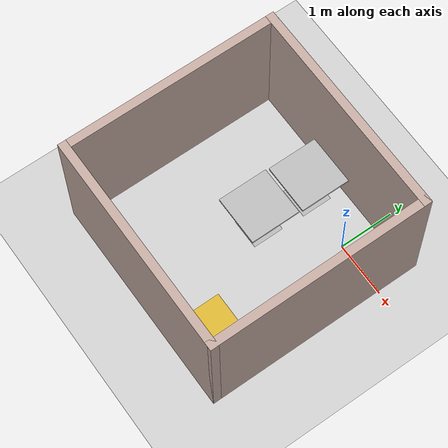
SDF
<sdf version="1.6">
 <world name="default">
  <light name="sun" type="directional">
   <pose>0 0 15 0 -0 0</pose>
   <diffuse>0.8 0.8 0.8 1</diffuse>
   <specular>0.2 0.2 0.2 1</specular>
   <attenuation>
    <range>1000</range>
    <constant>0.9</constant>
    <linear>0.01</linear>
    <quadratic>0.001</quadratic>
   </attenuation>
   <direction>-0.5 0.1 -0.9</direction>
  </light>
  <model name="ground_plane">
   <static>1</static>
   <link name="link">
    <collision name="collision">
     <geometry><plane><normal>0 0 1</normal><size>100 100</size></plane></geometry>
     <surface><friction><ode><mu>100</mu><mu2>50</mu2></ode></friction></surface>
    </collision>
    <visual name="visual">
     <cast_shadows>0</cast_shadows>
     <geometry><plane><normal>0 0 1</normal><size>100 100</size></plane></geometry>
     <material>
      <script><uri>file://media/materials/scripts/gazebo.material</uri><name>Gazebo/Grey</name></script>
     </material>
    </visual>
   </link>
  </model>
  <gravity>0 0 -9.8</gravity>
  <magnetic_field>6e-06 2.3e-05 -4.2e-05</magnetic_field>
  <atmosphere type="adiabatic"/>
  <physics name="default_physics" default="0" type="ode">
   <max_step_size>0.001</max_step_size>
   <real_time_factor>1</real_time_factor>
   <real_time_update_rate>1000</real_time_update_rate>
  </physics>
  <scene><ambient>0.4 0.4 0.4 1</ambient><background>0.7 0.7 0.7 1</background><shadows>1</shadows></scene>
  <audio><device>default</device></audio>
  <spherical_coordinates>
   <surface_model>EARTH_WGS84</surface_model>
   <latitude_deg>0</latitude_deg>
   <longitude_deg>0</longitude_deg>
   <elevation>0</elevation>
   <heading_deg>0</heading_deg>
  </spherical_coordinates>
  <model name="field1_F">
   <link name="Wall_0">
    <pose>0 1.925 0 0 -0 0</pose>
    <visual name="Wall_0_Visual">
     <pose>0 0 1.25 0 -0 0</pose>
     <geometry><box><size>4 0.15 2.5</size></box></geometry>
     <material>
      <script><uri>file://media/materials/scripts/gazebo.material</uri><name>Gazebo/Grey</name></script>
      <ambient>0.760784 0.662745 0.627451 1</ambient>
     </material>
     <meta><layer>0</layer></meta>
    </visual>
    <collision name="Wall_0_Collision">
     <pose>0 0 1.25 0 -0 0</pose>
     <geometry><box><size>4 0.15 2.5</size></box></geometry>
     <surface>
      <friction>
       <ode><mu>1</mu><mu2>1</mu2><fdir1>0 0 0</fdir1><slip1>0</slip1><slip2>0</slip2></ode>
       <torsional>
        <coefficient>1</coefficient>
        <patch_radius>0</patch_radius>
        <surface_radius>0</surface_radius>
        <use_patch_radius>1</use_patch_radius>
        <ode><slip>0</slip></ode>
       </torsional>
      </friction>
      <bounce><restitution_coefficient>0</restitution_coefficient><threshold>1e+06</threshold></bounce>
      <contact>
       <collide_without_contact>0</collide_without_contact>
       <collide_without_contact_bitmask>1</collide_without_contact_bitmask>
       <collide_bitmask>1</collide_bitmask>
       <ode>
        <soft_cfm>0</soft_cfm>
        <soft_erp>0.2</soft_erp>
        <kp>1e+13</kp>
        <kd>1</kd>
        <max_vel>0.01</max_vel>
        <min_depth>0</min_depth>
       </ode>
       <bullet>
        <split_impulse>1</split_impulse>
        <split_impulse_penetration_threshold>-0.01</split_impulse_penetration_threshold>
        <soft_cfm>0</soft_cfm>
        <soft_erp>0.2</soft_erp>
        <kp>1e+13</kp>
        <kd>1</kd>
       </bullet>
      </contact>
     </surface>
    </collision>
   </link>
   <link name="Wall_1">
    <pose>1.925 0 0 0 0 -1.5708</pose>
    <visual name="Wall_1_Visual">
     <pose>0 0 1.25 0 -0 0</pose>
     <geometry><box><size>4 0.15 2.5</size></box></geometry>
     <material>
      <script><uri>file://media/materials/scripts/gazebo.material</uri><name>Gazebo/Grey</name></script>
      <ambient>0.760784 0.662745 0.627451 1</ambient>
     </material>
     <meta><layer>0</layer></meta>
    </visual>
    <collision name="Wall_1_Collision">
     <pose>0 0 1.25 0 -0 0</pose>
     <geometry><box><size>4 0.15 2.5</size></box></geometry>
     <surface>
      <friction>
       <ode><mu>1</mu><mu2>1</mu2><fdir1>0 0 0</fdir1><slip1>0</slip1><slip2>0</slip2></ode>
       <torsional>
        <coefficient>1</coefficient>
        <patch_radius>0</patch_radius>
        <surface_radius>0</surface_radius>
        <use_patch_radius>1</use_patch_radius>
        <ode><slip>0</slip></ode>
       </torsional>
      </friction>
      <bounce><restitution_coefficient>0</restitution_coefficient><threshold>1e+06</threshold></bounce>
      <contact>
       <collide_without_contact>0</collide_without_contact>
       <collide_without_contact_bitmask>1</collide_without_contact_bitmask>
       <collide_bitmask>1</collide_bitmask>
       <ode>
        <soft_cfm>0</soft_cfm>
        <soft_erp>0.2</soft_erp>
        <kp>1e+13</kp>
        <kd>1</kd>
        <max_vel>0.01</max_vel>
        <min_depth>0</min_depth>
       </ode>
       <bullet>
        <split_impulse>1</split_impulse>
        <split_impulse_penetration_threshold>-0.01</split_impulse_penetration_threshold>
        <soft_cfm>0</soft_cfm>
        <soft_erp>0.2</soft_erp>
        <kp>1e+13</kp>
        <kd>1</kd>
       </bullet>
      </contact>
     </surface>
    </collision>
   </link>
   <link name="Wall_3">
    <pose>-1.925 0 0 0 0 -1.5708</pose>
    <visual name="Wall_3_Visual">
     <pose>0 0 1.25 0 -0 0</pose>
     <geometry><box><size>4 0.15 2.5</size></box></geometry>
     <material>
      <script><uri>file://media/materials/scripts/gazebo.material</uri><name>Gazebo/Grey</name></script>
      <ambient>0.760784 0.662745 0.627451 1</ambient>
     </material>
     <meta><layer>0</layer></meta>
    </visual>
    <collision name="Wall_3_Collision">
     <pose>0 0 1.25 0 -0 0</pose>
     <geometry><box><size>4 0.15 2.5</size></box></geometry>
     <surface>
      <friction>
       <ode><mu>1</mu><mu2>1</mu2><fdir1>0 0 0</fdir1><slip1>0</slip1><slip2>0</slip2></ode>
       <torsional>
        <coefficient>1</coefficient>
        <patch_radius>0</patch_radius>
        <surface_radius>0</surface_radius>
        <use_patch_radius>1</use_patch_radius>
        <ode><slip>0</slip></ode>
       </torsional>
      </friction>
      <bounce><restitution_coefficient>0</restitution_coefficient><threshold>1e+06</threshold></bounce>
      <contact>
       <collide_without_contact>0</collide_without_contact>
       <collide_without_contact_bitmask>1</collide_without_contact_bitmask>
       <collide_bitmask>1</collide_bitmask>
       <ode>
        <soft_cfm>0</soft_cfm>
        <soft_erp>0.2</soft_erp>
        <kp>1e+13</kp>
        <kd>1</kd>
        <max_vel>0.01</max_vel>
        <min_depth>0</min_depth>
       </ode>
       <bullet>
        <split_impulse>1</split_impulse>
        <split_impulse_penetration_threshold>-0.01</split_impulse_penetration_threshold>
        <soft_cfm>0</soft_cfm>
        <soft_erp>0.2</soft_erp>
        <kp>1e+13</kp>
        <kd>1</kd>
       </bullet>
      </contact>
     </surface>
    </collision>
   </link>
   <link name="Wall_4">
    <pose>0 -1.925 0 0 -0 0</pose>
    <visual name="Wall_4_Visual">
     <pose>0 0 1.25 0 -0 0</pose>
     <geometry><box><size>4 0.15 2.5</size></box></geometry>
     <material>
      <script><uri>file://media/materials/scripts/gazebo.material</uri><name>Gazebo/Grey</name></script>
      <ambient>0.760784 0.662745 0.627451 1</ambient>
     </material>
     <meta><layer>0</layer></meta>
    </visual>
    <collision name="Wall_4_Collision">
     <pose>0 0 1.25 0 -0 0</pose>
     <geometry><box><size>4 0.15 2.5</size></box></geometry>
     <surface>
      <friction>
       <ode><mu>1</mu><mu2>1</mu2><fdir1>0 0 0</fdir1><slip1>0</slip1><slip2>0</slip2></ode>
       <torsional>
        <coefficient>1</coefficient>
        <patch_radius>0</patch_radius>
        <surface_radius>0</surface_radius>
        <use_patch_radius>1</use_patch_radius>
        <ode><slip>0</slip></ode>
       </torsional>
      </friction>
      <bounce><restitution_coefficient>0</restitution_coefficient><threshold>1e+06</threshold></bounce>
      <contact>
       <collide_without_contact>0</collide_without_contact>
       <collide_without_contact_bitmask>1</collide_without_contact_bitmask>
       <collide_bitmask>1</collide_bitmask>
       <ode>
        <soft_cfm>0</soft_cfm>
        <soft_erp>0.2</soft_erp>
        <kp>1e+13</kp>
        <kd>1</kd>
        <max_vel>0.01</max_vel>
        <min_depth>0</min_depth>
       </ode>
       <bullet>
        <split_impulse>1</split_impulse>
        <split_impulse_penetration_threshold>-0.01</split_impulse_penetration_threshold>
        <soft_cfm>0</soft_cfm>
        <soft_erp>0.2</soft_erp>
        <kp>1e+13</kp>
        <kd>1</kd>
       </bullet>
      </contact>
     </surface>
    </collision>
   </link>
   <link name="link_0">
    <inertial>
     <mass>1</mass>
     <inertia>
      <ixx>0.166667</ixx>
      <ixy>0</ixy>
      <ixz>0</ixz>
      <iyy>0.166667</iyy>
      <iyz>0</iyz>
      <izz>0.166667</izz>
     </inertia>
    </inertial>
    <pose>1.24399 -1.34699 0.5 0 -0 1.5708</pose>
    <visual name="visual">
     <geometry><box><size>0.5 0.75 1</size></box></geometry>
     <material>
      <lighting>1</lighting>
      <script><uri>file://media/materials/scripts/gazebo.material</uri><name>Gazebo/Gold</name></script>
      <shader type="vertex"><normal_map>__default__</normal_map></shader>
      <ambient>0.2 0.5 0.5 1</ambient>
      <diffuse>0.7 0.7 0.7 1</diffuse>
      <specular>0.01 0.01 0.01 1</specular>
      <emissive>0 0 0 1</emissive>
     </material>
    </visual>
    <collision name="collision">
     <geometry><box><size>0.5 0.75 1</size></box></geometry>
     <surface>
      <friction>
       <ode><mu>1</mu><mu2>1</mu2><fdir1>0 0 0</fdir1><slip1>0</slip1><slip2>0</slip2></ode>
       <torsional>
        <coefficient>1</coefficient>
        <patch_radius>0</patch_radius>
        <surface_radius>0</surface_radius>
        <use_patch_radius>1</use_patch_radius>
        <ode><slip>0</slip></ode>
       </torsional>
      </friction>
      <bounce><restitution_coefficient>0</restitution_coefficient><threshold>1e+06</threshold></bounce>
      <contact>
       <collide_without_contact>0</collide_without_contact>
       <collide_without_contact_bitmask>1</collide_without_contact_bitmask>
       <collide_bitmask>1</collide_bitmask>
       <ode>
        <soft_cfm>0</soft_cfm>
        <soft_erp>0.2</soft_erp>
        <kp>1e+13</kp>
        <kd>1</kd>
        <max_vel>0.01</max_vel>
        <min_depth>0</min_depth>
       </ode>
       <bullet>
        <split_impulse>1</split_impulse>
        <split_impulse_penetration_threshold>-0.01</split_impulse_penetration_threshold>
        <soft_cfm>0</soft_cfm>
        <soft_erp>0.2</soft_erp>
        <kp>1e+13</kp>
        <kd>1</kd>
       </bullet>
      </contact>
     </surface>
    </collision>
   </link>
   <model name="cafe_table">
    <static>1</static>
    <link name="link">
     <collision name="surface">
      <pose>0 0 0.755 0 -0 0</pose>
      <geometry><box><size>0.913 0.913 0.04</size></box></geometry>
     </collision>
     <collision name="column">
      <pose>0 0 0.37 0 -0 0</pose>
      <geometry><box><size>0.042 0.042 0.74</size></box></geometry>
     </collision>
     <collision name="base">
      <pose>0 0 0.02 0 -0 0</pose>
      <geometry><box><size>0.56 0.56 0.04</size></box></geometry>
     </collision>
     <visual name="visual">
      <geometry><mesh><uri>model://cafe_table/meshes/cafe_table.dae</uri></mesh></geometry>
     </visual>
    </link>
    <pose>-0.039641 1.3183 0 0 -0 0</pose>
   </model>
   <model name="cafe_table_clone">
    <static>1</static>
    <link name="link">
     <collision name="surface">
      <pose>0 0 0.755 0 -0 0</pose>
      <geometry><box><size>0.913 0.913 0.04</size></box></geometry>
     </collision>
     <collision name="column">
      <pose>0 0 0.37 0 -0 0</pose>
      <geometry><box><size>0.042 0.042 0.74</size></box></geometry>
     </collision>
     <collision name="base">
      <pose>0 0 0.02 0 -0 0</pose>
      <geometry><box><size>0.56 0.56 0.04</size></box></geometry>
     </collision>
     <visual name="visual">
      <geometry><mesh><uri>model://cafe_table/meshes/cafe_table.dae</uri></mesh></geometry>
     </visual>
    </link>
    <pose>-0.058234 0.348445 0 0 -0 0</pose>
   </model>
   <static>1</static>
   <pose>-1.04059 -1.22443 0 0 -0 0</pose>
  </model>
 </world>
</sdf>
